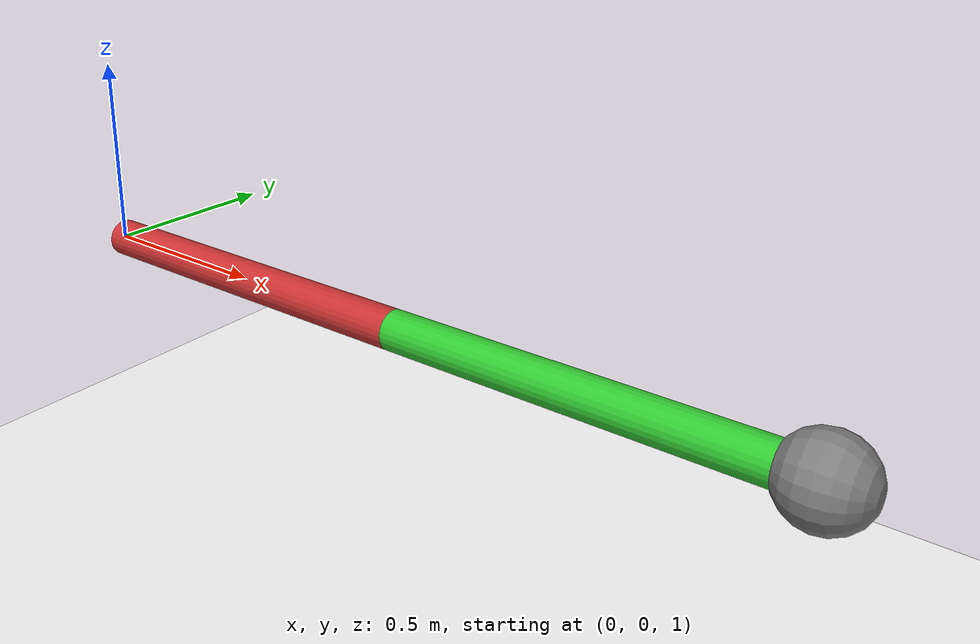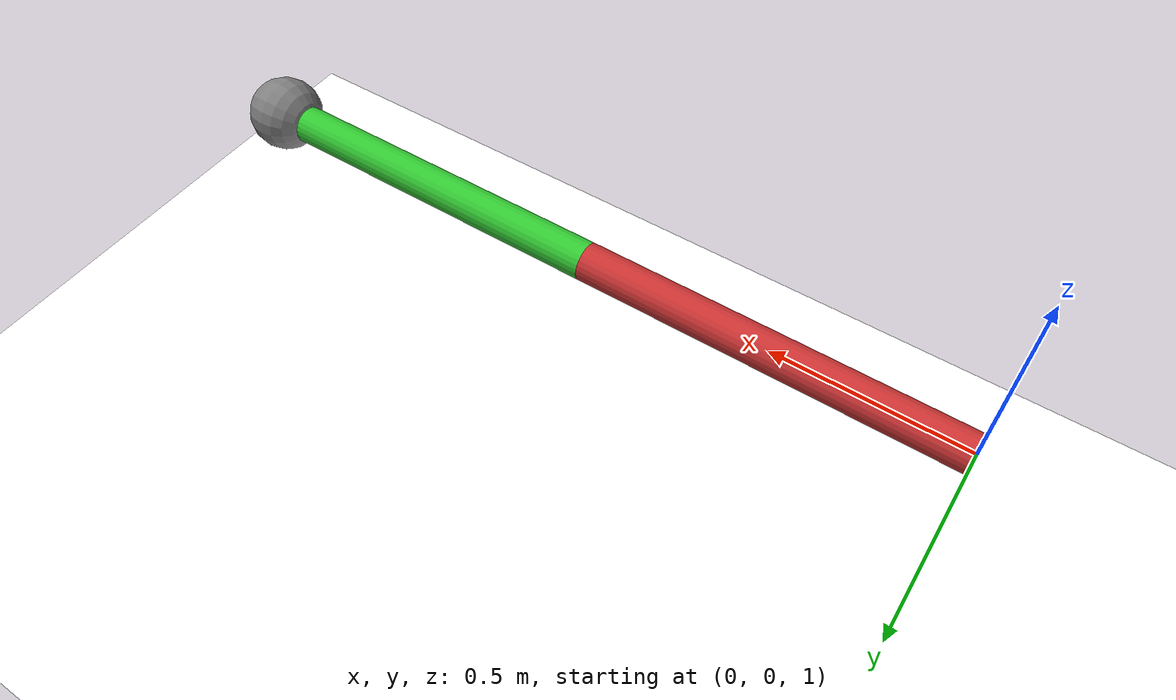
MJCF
<mujoco>
    <option timestep="0.001" integrator="RK4" gravity="0 0 0" density="1" viscosity="1e-5" >
		<flag sensornoise="enable" energy="enable" contact="disable" />
	</option>
    <asset>
        <texture builtin="gradient" type="skybox" height="100" width="100" rgb1="1 1 1" rgb2="0 0 0"/>
        <texture name="texgeom" builtin="flat" height="1278" mark="cross" markrgb="1 1 1" random="0.01" rgb1="0.8 0.6 0.4" rgb2="0.8 0.6 0.4" type="cube" width="127"/>
        <texture name="texplane" builtin="checker" height="100" width="100" rgb1="0 0 0" rgb2="0.8 0.8 0.8" type="2d"/>
        <material name="MatPlane" reflectance="0.5" shininess="1" specular="1" texrepeat="60 60" texture="texplane"/>
        <material name="geom" texture="texgeom" texuniform="true"/>
    </asset>
	<worldbody>
        <light diffuse=".5 .5 .5" pos="0 0 3" dir="0 0 -1"/>
		<geom conaffinity="1" condim="3" material="MatPlane" name="floor" pos="0 0 0" rgba="1 1 1 1" size="3 3 0.1" type="plane"/>
		<body pos=".5 0 1" euler="0 90 0">
			<joint name="pin" type="hinge" axis="-1 0 0"  pos="0 0 -.5"/>
			<geom type="cylinder" size="0.05 0.5" rgba=".8 .2 .2 1"  mass="1"/>
            <body pos="0 0 1" euler="0 0 0">
                <joint name="pin2" type="hinge" axis="-1 0 0"  pos="0 0 -.5"/>
                <geom type="cylinder" size="0.05 0.5" rgba=".2 .8 .2 1" mass="1"/>
                <site name="tip" size="0.1" pos="0 0 0.5"/>
            </body>
		</body>
	</worldbody>
    <actuator>
		<position name="pservo1" joint="pin" kp="1000" />
		<velocity name="vservo1" joint="pin" kv="100" />
		<position name="pservo2" joint="pin2" kp="1000" />
		<velocity name="vservo2" joint="pin2" kv="100" />
	</actuator>
    <sensor>
        <framepos objtype="site" objname="tip" noise="0.1"/>
        <framelinvel objtype="site" objname="tip" noise="0.1" />
    </sensor>
</mujoco>
